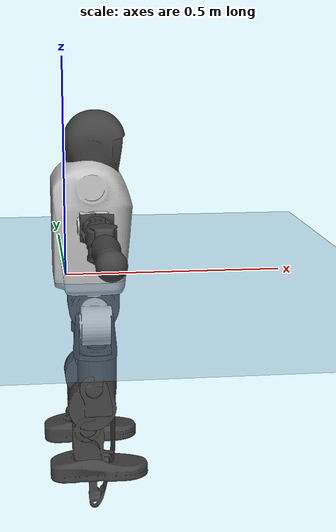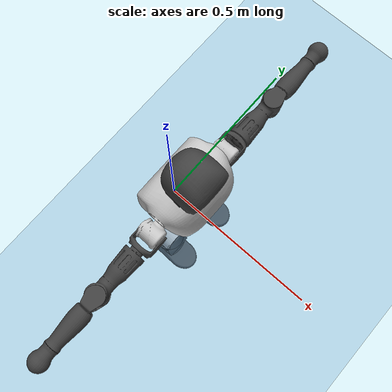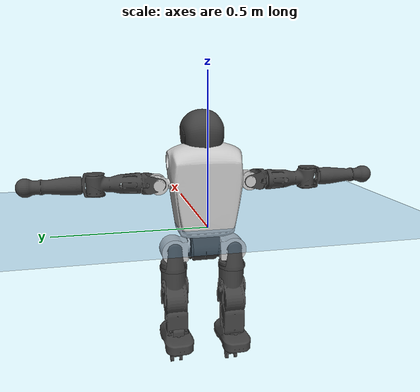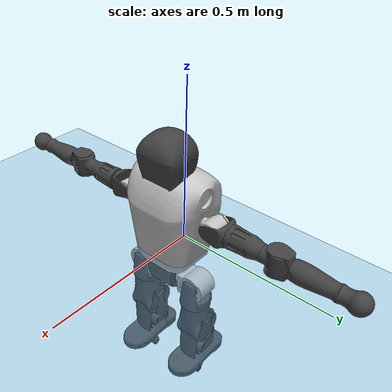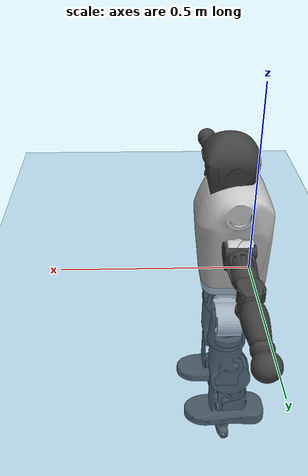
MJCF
<mujoco model="T1">
  <compiler angle="radian" assetdir="assets" balanceinertia="true" inertiafromgeom="false"/>

  <option timestep="0.005" density="1.2" viscosity="2e-05"/>

  <size nkey="1"/>

  <visual>
    <quality shadowsize="8192"/>
    <map shadowclip="0.5"/>
  </visual>

  <default>
    <default class="/">
      <joint armature="0.01" damping="0.01" frictionloss="0.1"/>
      <geom contype="0" conaffinity="0" group="1" solref="-1000 -80"/>
      <site size="0.01 0.005 0.005" group="5"/>
      <general forcelimited="true" biastype="affine" gainprm="25" biasprm="0 -25 -0.6"/>
      <default class="t1">
        <geom rgba="0.25 0.25 0.25 1"/>
        <default class="visual">
          <geom type="mesh" group="2"/>
        </default>
        <default class="collision">
          <geom group="3"/>
        </default>
        <default class="foot">
          <geom size="0.1115 0.05 0.015" type="box" condim="6" group="4" priority="1" solimp="0.015 1 0.015"/>
        </default>
        <default class="reward_collision_sphere">
          <geom group="5" rgba="1 0 0 1"/>
        </default>
      </default>
    </default>
  </default>

  <asset>
    <texture type="skybox" colorspace="auto" name="//unnamed_texture_0" builtin="gradient" rgb1="0.95 0.95 0.95" rgb2="0.95 0.95 0.95" width="100" height="600"/>
    <texture type="2d" colorspace="auto" name="texplane" builtin="checker" rgb1="0.345 0.575 0.748" rgb2="0.345 0.575 0.748" markrgb="1 1 1" width="512" height="512"/>
    <material name="MatPlane" class="/" texture="texplane" texuniform="true" texrepeat="2 2" specular="0.9"/>
    <mesh name="Trunk" class="/" file="Trunk.stl"/>
    <mesh name="H1" class="/" file="H1.stl"/>
    <mesh name="H2" class="/" file="H2.stl"/>
    <mesh name="AL1" class="/" file="AL1.stl"/>
    <mesh name="AL2" class="/" file="AL2.stl"/>
    <mesh name="AL3" class="/" file="AL3.stl"/>
    <mesh name="left_hand_link" class="/" file="left_hand_link.stl"/>
    <mesh name="AR1" class="/" file="AR1.stl"/>
    <mesh name="AR2" class="/" file="AR2.stl"/>
    <mesh name="AR3" class="/" file="AR3.stl"/>
    <mesh name="right_hand_link" class="/" file="right_hand_link.stl"/>
    <mesh name="Waist" class="/" file="Waist.stl"/>
    <mesh name="Hip_Pitch_Left" class="/" file="Hip_Pitch_Left.stl"/>
    <mesh name="Hip_Roll_Left" class="/" file="Hip_Roll_Left.stl"/>
    <mesh name="Hip_Yaw_Left" class="/" file="Hip_Yaw_Left.stl"/>
    <mesh name="Shank_Left" class="/" file="Shank_Left.stl"/>
    <mesh name="Ankle_Cross_Left" class="/" file="Ankle_Cross_Left.stl"/>
    <mesh name="left_foot_link" class="/" file="left_foot_link.stl"/>
    <mesh name="Hip_Pitch_Right" class="/" file="Hip_Pitch_Right.stl"/>
    <mesh name="Hip_Roll_Right" class="/" file="Hip_Roll_Right.stl"/>
    <mesh name="Hip_Yaw_Right" class="/" file="Hip_Yaw_Right.stl"/>
    <mesh name="Shank_Right" class="/" file="Shank_Right.stl"/>
    <mesh name="Ankle_Cross_Right" class="/" file="Ankle_Cross_Right.stl"/>
    <mesh name="right_foot_link" class="/" file="right_foot_link.stl"/>
  </asset>

  <worldbody>
    <geom name="floor" class="/" size="100 100 0.125" type="plane" group="0" material="MatPlane"/>
    <light name="toplight_shadow" class="/" pos="0 0 5" dir="0.0990148 0.0990148 -0.990148" type="directional" ambient="0.04 0.04 0.04" diffuse="0.55 0.55 0.55" specular="0.12 0.12 0.12"/>
    <light name="toplight_fill" class="/" pos="0 0 5" dir="0.0990148 0.0990148 -0.990148" type="directional" castshadow="false" ambient="0.04 0.04 0.04" diffuse="0.3 0.3 0.3" specular="0.08 0.08 0.08"/>
    <body name="trunk" childclass="t1" pos="-0.000817339 -1.61888e-05 -0.00142122" quat="1 -0.000639674 -0.000679261 9.36239e-05">
      <inertial pos="0.0540227 -0.00328714 0.065712" quat="0.999914 0.00469342 -0.0113445 0.00469722" mass="8.27197" diaginertia="0.0868531 0.0801902 0.00654359"/>
      <joint name="//unnamed_joint_0" type="free" armature="0" damping="0" frictionloss="0"/>
      <geom name="//unnamed_geom_1" class="visual" rgba="0.76 0.76 0.76 1" mesh="Trunk"/>
      <geom name="//unnamed_geom_2" class="collision" size="0.0655658 0.0874211 0.131132" pos="0.0589535 0 0.0770088" type="box"/>
      <geom name="//unnamed_geom_3" class="reward_collision_sphere" size="0.100534" pos="0.0589535 0 0.064174"/>
      <geom name="//unnamed_geom_4" class="reward_collision_sphere" size="0.0131132" pos="0.0589535 0.0848584 0"/>
      <geom name="//unnamed_geom_5" class="reward_collision_sphere" size="0.0131132" pos="0.0589535 -0.0848584 0"/>
      <geom name="//unnamed_geom_6" class="reward_collision_sphere" size="0.0131132" pos="0.0589535 0.106822 0.115513"/>
      <geom name="//unnamed_geom_7" class="reward_collision_sphere" size="0.0131132" pos="0.0589535 -0.106822 0.115513"/>
      <site name="imu" pos="-0.0225989 0.0132032 0.00976494" size="0.00874211"/>
      <camera name="track" pos="0 -1.99667 0" quat="0.707107 0.707107 0 0" mode="trackcom"/>
      <camera name="ego_camera" pos="0.119872 0 0.269531" quat="-0.5 -0.5 0.5 0.5"/>
      <body name="H1" pos="0.0585395 -0.000911535 0.155361" quat="1 0.000423229 6.51266e-05 0.000188074">
        <inertial pos="0.000813417 -0.00386935 0.0343881" quat="0.7688 -0.0109711 -0.00793358 0.639346" mass="0.287271" diaginertia="0.000211949 0.000220412 1.57783e-05"/>
        <joint name="AAHead_yaw" pos="0 0 0" axis="0.00191912 -0.000899297 0.999998" range="-1.53439 1.57583" armature="0.00985113" damping="0.0180454" frictionloss="0.0762193"/>
        <geom name="//unnamed_geom_8" class="visual" mesh="H1"/>
        <body name="H2" pos="-0.000956868 0.00318739 0.0374078" quat="1 0.00010999 -6.26319e-06 4.04411e-05">
          <inertial pos="0.00278274 -0.00241524 0.0632186" quat="0.988604 0.113449 -0.0686759 -0.071241" mass="0.400672" diaginertia="0.00192632 0.00186164 0.000183401"/>
          <joint name="Head_pitch" pos="0 0 0" axis="-0.000632303 -0.999916 0.012971" range="-1.23428 0.347276" armature="0.00972403" damping="0.00324593" frictionloss="0.08826"/>
          <geom name="//unnamed_geom_9" class="visual" mesh="H2"/>
          <geom name="//unnamed_geom_10" class="collision" size="0.0699369" pos="0.00982558 0 0.0705914"/>
          <geom name="//unnamed_geom_11" class="reward_collision_sphere" size="0.078679" pos="0.0196512 0 0.064174"/>
        </body>
      </body>
      <body name="AL1" pos="0.0576558 0.107606 0.142566" quat="1 -2.46766e-05 -0.000461787 -0.000204048">
        <inertial pos="0.00125825 0.0463924 -0.00332769" quat="0.49903 0.496968 -0.506783 0.497155" mass="0.340471" diaginertia="0.00120632 0.00128072 3.23879e-05"/>
        <joint name="Left_Shoulder_Pitch" pos="0 0 0" axis="-0.00409493 0.999924 0.0116658" stiffness="0.0163821" range="-3.2515 1.21861" armature="0.00980108" damping="0.0209061" frictionloss="0.090103"/>
        <geom name="//unnamed_geom_12" class="visual" rgba="0.76 0.76 0.76 1" mesh="AL1"/>
        <body name="AL2" pos="0.00389987 0.0440971 0.00278622" quat="0.999997 -0.000240947 -0.000859814 -0.0020861">
          <inertial pos="0.00611904 0.03832 0.00110025" quat="0.481098 0.520591 -0.485842 0.511358" mass="0.0958351" diaginertia="0.000345304 0.000322262 1.78197e-05"/>
          <joint name="Left_Shoulder_Roll" pos="0 0 0" axis="-0.99967 -0.00418346 -0.0253306" range="-1.58037 1.72132" armature="0.00931198" damping="0.0271033" frictionloss="0.0776976"/>
          <geom name="//unnamed_geom_13" class="visual" mesh="AL2"/>
          <body name="AL3" pos="0.00229088 0.0576407 0.0024049" quat="0.999997 -0.00164588 0.00142649 0.00132257">
            <inertial pos="0.0018539 0.0864622 0.000267994" quat="0.7011 0.713045 0.00390351 0.00331095" mass="0.654728" diaginertia="0.0111267 0.0122722 6.36232e-05"/>
            <joint name="Left_Elbow_Pitch" pos="0 0 0" axis="0.00183116 -0.999997 -0.00134229" stiffness="0.0190176" range="-2.30448 2.25442" armature="0.0088047" damping="0.0104649" frictionloss="0.085908"/>
            <geom name="//unnamed_geom_14" class="visual" mesh="AL3"/>
            <geom name="//unnamed_geom_15" class="collision" size="0.0262263 0.0655658" pos="0 0.0499167 0" quat="0.707105 0.707108 0 0" type="cylinder"/>
            <geom name="//unnamed_geom_16" class="reward_collision_sphere" size="0.0314716"/>
            <body name="left_hand_link" pos="0.00194938 0.142656 0.000547655" quat="0.999999 0.00123871 0.000947123 -0.000739243">
              <inertial pos="-0.000934598 0.107877 0.00342183" quat="0.716972 0.697086 -0.000696953 0.00461499" mass="0.230154" diaginertia="0.0080664 0.00858959 2.4431e-05"/>
              <joint name="Left_Elbow_Yaw" pos="0 0 0" axis="-0.00312904 0.0097366 0.999948" range="-2.43493 -0.0315057" armature="0.0086031" damping="0.00940534" frictionloss="0.067704"/>
              <geom name="//unnamed_geom_17" class="visual" mesh="left_hand_link"/>
              <geom name="//unnamed_geom_18" class="collision" size="0.0262263 0.0764934" pos="0 0.129783 0" quat="0.707105 0.707108 0 0" type="cylinder"/>
              <geom name="//unnamed_geom_19" class="reward_collision_sphere" size="0.0437105"/>
              <geom name="//unnamed_geom_20" class="reward_collision_sphere" size="0.0305974" pos="0 0.109817 0"/>
              <geom name="//unnamed_geom_21" class="reward_collision_sphere" size="0.0305974" pos="0 0.214642 0"/>
            </body>
          </body>
        </body>
      </body>
      <body name="AR1" pos="0.058716 -0.106499 0.142905" quat="0.999998 0.000141975 0.0018882 -4.07524e-05">
        <inertial pos="-0.000455471 -0.0473269 0.00260702" quat="0.503479 0.498893 -0.506194 0.491306" mass="0.352678" diaginertia="0.00123327 0.00121405 3.10567e-05"/>
        <joint name="Right_Shoulder_Pitch" pos="0 0 0" axis="-0.00559928 -0.999975 0.0043051" range="-1.29763 3.25765" armature="0.00857282" damping="0" frictionloss="0.0907582"/>
        <geom name="//unnamed_geom_22" class="visual" rgba="0.76 0.76 0.76 1" mesh="AR1"/>
        <body name="AR2" pos="0.0033506 -0.0480786 0.000254688" quat="1 -0.000144038 -0.000611318 -0.000228923">
          <inertial pos="0.00296355 -0.035745 0.000561662" quat="0.511065 0.486211 -0.514899 0.487125" mass="0.11281" diaginertia="0.000390834 0.000372491 1.90951e-05"/>
          <joint name="Right_Shoulder_Roll" pos="0 0 0" axis="-0.999983 0.00300377 0.00500733" range="-1.71707 1.64027" armature="0.008684" damping="0.0190395" frictionloss="0.100868"/>
          <geom name="//unnamed_geom_23" class="visual" mesh="AR2"/>
          <body name="AR3" pos="-0.00120369 -0.0649868 -0.0025818" quat="1 0.000158897 0.000900516 0.000145394">
            <inertial pos="4.45386e-05 -0.0877968 -0.00198132" quat="0.705987 0.707772 0.0208464 0.0143904" mass="0.663979" diaginertia="0.011493 0.0125758 6.47183e-05"/>
            <joint name="Right_Elbow_Pitch" pos="0 0 0" axis="0.000587449 0.999997 -0.00230263" range="-2.26396 2.27342" armature="0.00762515" damping="0.00802628" frictionloss="0.0711663"/>
            <geom name="//unnamed_geom_24" class="visual" mesh="AR3"/>
            <geom name="//unnamed_geom_25" class="collision" size="0.0262263 0.0655658" pos="0 -0.0499167 0" quat="0.707105 0.707108 0 0" type="cylinder"/>
            <geom name="//unnamed_geom_26" class="reward_collision_sphere" size="0.0314716"/>
            <body name="right_hand_link" pos="0.00258373 -0.149134 0.00251664" quat="1 -0.00045706 0.000313597 0.000277904">
              <inertial pos="0.00219184 -0.109016 -0.00285024" quat="0.700199 0.71385 -0.0033438 0.0113136" mass="0.236861" diaginertia="0.00785021 0.008452 2.47272e-05"/>
              <joint name="Right_Elbow_Yaw" pos="0 0 0" axis="0.0106492 0.00702676 0.999919" range="0.0288582 2.4866" armature="0.006628" damping="0.00696926" frictionloss="0.0887976"/>
              <geom name="//unnamed_geom_27" class="visual" mesh="right_hand_link"/>
              <geom name="//unnamed_geom_28" class="collision" size="0.0262263 0.0764934" pos="0 -0.129783 0" quat="0.707105 0.707108 0 0" type="cylinder"/>
              <geom name="//unnamed_geom_29" class="reward_collision_sphere" size="0.0437105"/>
              <geom name="//unnamed_geom_30" class="reward_collision_sphere" size="0.0305974" pos="0 -0.109817 0"/>
              <geom name="//unnamed_geom_31" class="reward_collision_sphere" size="0.0305974" pos="0 -0.214642 0"/>
            </body>
          </body>
        </body>
      </body>
      <body name="Waist" pos="0.0623469 0.00288849 -0.0725899" quat="1 -0.000161062 -0.000400693 0.00051351">
        <inertial pos="-0.00155848 -0.00145787 0.00312859" quat="0.984232 0.00812849 -0.176658 0.00357368" mass="1.75607" diaginertia="0.00499466 0.00559274 0.000541475"/>
        <joint name="Waist" pos="0 0 0" axis="0.00813381 0.00547613 0.999952" range="-1.66315 1.60385" armature="0.00959052" damping="0.0226092" frictionloss="0.0795516"/>
        <geom name="//unnamed_geom_32" class="visual" mesh="Waist"/>
        <body name="Hip_Pitch_Left" pos="0.00345009 0.103321 0.00143833" quat="0.999998 -0.000202179 0.000492002 0.00177874">
          <inertial pos="0.00068012 -0.0116259 -0.0111627" quat="0.975205 0.220634 0.0164683 0.00507701" mass="0.65888" diaginertia="0.0016431 0.00135246 0.000134688"/>
          <joint name="Left_Hip_Pitch" pos="0 0 0" axis="-0.0110817 0.99977 -0.0183825" range="-1.77818 1.57315" armature="0.0088379" damping="0.0234491" frictionloss="0.0876988"/>
          <geom name="//unnamed_geom_33" class="visual" rgba="0.76 0.76 0.76 1" mesh="Hip_Pitch_Left"/>
          <body name="Hip_Roll_Left" pos="0.00121286 1.10687e-05 -0.0130007" quat="0.999999 -0.00029429 0.000607569 -0.00113314">
            <inertial pos="0.00420833 0.000709863 -0.0374824" quat="0.707634 -0.00601429 -0.00629559 0.706526" mass="0.256528" diaginertia="0.00157687 0.001558 5.77333e-05"/>
            <joint name="Left_Hip_Roll" pos="0 0 0" axis="-0.999976 -0.00687252 0.00061936" stiffness="0.00122497" range="-1.51359 0.155757" armature="0.0085168" damping="0.00239882" frictionloss="0.0810939"/>
            <geom name="//unnamed_geom_34" class="visual" mesh="Hip_Roll_Left"/>
            <geom name="//unnamed_geom_35" class="reward_collision_sphere" size="0.0480816"/>
            <body name="Hip_Yaw_Left" pos="-0.00238688 0.000341739 -0.0492368" quat="1 -1.40352e-06 1.28243e-06 -1.83693e-06">
              <inertial pos="-0.00454681 -0.00129854 -0.0595784" quat="0.683561 -0.0235479 -0.0375855 0.728544" mass="1.42135" diaginertia="0.0242103 0.0265496 0.000285793"/>
              <joint name="Left_Hip_Yaw" pos="0 0 0" axis="-0.0129838 0.00465884 -0.999905" stiffness="0.0109305" range="-0.995806 1.06559" armature="0.00864103" damping="0" frictionloss="0.0879968"/>
              <geom name="//unnamed_geom_36" class="visual" mesh="Hip_Yaw_Left"/>
              <geom name="//unnamed_geom_37" class="collision" size="0.0437105 0.0699369" type="cylinder"/>
              <body name="Shank_Left" pos="-0.0124962 -0.00129531 -0.0860564" quat="1 -0.000449294 -0.000212067 -3.3405e-05">
                <inertial pos="-0.00613951 0.00237738 -0.0779228" quat="0.99736 0.00683395 -0.0265528 0.0672419" mass="1.15262" diaginertia="0.0305636 0.0333718 0.000195483"/>
                <joint name="Left_Knee_Pitch" pos="0 0 0" axis="0.00236622 0.999997 1.22849e-05" range="0.0377092 2.35526" armature="0.00980755" damping="0.00270969" frictionloss="0.0776253"/>
                <geom name="//unnamed_geom_38" class="visual" mesh="Shank_Left"/>
                <geom name="//unnamed_geom_39" class="collision" size="0.0437105 0.0655658" pos="0 0 -0.0770088" type="cylinder"/>
                <geom name="//unnamed_geom_40" class="reward_collision_sphere" size="0.0568237"/>
                <body name="Ankle_Cross_Left" pos="-0.00245761 -0.00036835 -0.177995" quat="1 0.000143701 -9.65431e-05 0.000129055">
                  <inertial pos="-0.00559194 0.000975128 -0.000419399" quat="0.44725 0.557561 0.546119 0.43686" mass="0.0483817" diaginertia="2.4803e-05 2.45896e-05 1.18013e-06"/>
                  <joint name="Left_Ankle_Pitch" pos="0 0 0" axis="-0.000734013 0.999989 0.00463186" range="-0.77069 0.361493" armature="0.00835871" damping="0.0246559" frictionloss="0.0761804"/>
                  <geom name="//unnamed_geom_41" class="visual" mesh="Ankle_Cross_Left"/>
                  <body name="left_foot_link" pos="-0.00301212 -0.000425729 -0.00362851" quat="0.999999 5.81254e-05 -0.000512419 -0.000916049">
                    <inertial pos="-0.00234216 0.00342045 -0.00330719" quat="3.38443e-05 0.621044 0.00112258 0.783775" mass="0.452449" diaginertia="0.00247642 0.0023722 0.000246735"/>
                    <joint name="Left_Ankle_Roll" pos="0 0 0" axis="-0.999914 -0.0131296 0.000339969" stiffness="0.0064331" range="-0.442956 0.403651" armature="0.00850832" damping="0" frictionloss="0.0959901"/>
                    <geom name="//unnamed_geom_42" class="visual" mesh="left_foot_link"/>
                    <geom name="left_foot" class="foot" size="0.111426 0.0330465 0.0137661" pos="0.00982558 0 -0.0096261"/>
                    <geom name="//unnamed_geom_44" class="reward_collision_sphere" size="0.045459" pos="0.00982558 0 -0.0096261"/>
                    <geom name="//unnamed_geom_45" class="reward_collision_sphere" size="0.0262263" pos="0.093343 -0.0229617 -0.0096261"/>
                    <geom name="//unnamed_geom_46" class="reward_collision_sphere" size="0.0262263" pos="-0.0687791 -0.0229617 -0.0096261"/>
                    <site name="left_foot" class="foot" pos="0.00982558 0 -0.0096261" size="0.00874211"/>
                  </body>
                </body>
              </body>
            </body>
          </body>
        </body>
        <body name="Hip_Pitch_Right" pos="-8.35337e-05 -0.103126 -0.00425676" quat="1 0.000410249 0.000124967 -0.000241886">
          <inertial pos="0.00064327 0.0102495 -0.0150528" quat="0.974575 -0.222959 0.0173016 -0.0138982" mass="0.703608" diaginertia="0.00170701 0.00150422 0.000137898"/>
          <joint name="Right_Hip_Pitch" pos="0 0 0" axis="0.00573682 -0.99997 -0.00524588" range="-1.55789 1.82101" armature="0.00794649" damping="0" frictionloss="0.0909084"/>
          <geom name="//unnamed_geom_47" class="visual" rgba="0.76 0.76 0.76 1" mesh="Hip_Pitch_Right"/>
          <body name="Hip_Roll_Right" pos="-0.000685678 -0.00101043 -0.0132679" quat="0.999997 0.000264756 -0.000621787 -0.00227861">
            <inertial pos="-0.00313591 0.00166029 -0.0341373" quat="0.711614 -0.00727591 -0.00971706 0.702466" mass="0.260188" diaginertia="0.00162265 0.00157056 5.63962e-05"/>
            <joint name="Right_Hip_Roll" pos="0 0 0" axis="-0.999998 -0.000488649 -0.00177572" range="-0.184586 1.5433" armature="0.00933271" damping="0.0165421" frictionloss="0.0877132"/>
            <geom name="//unnamed_geom_48" class="visual" mesh="Hip_Roll_Right"/>
            <geom name="//unnamed_geom_49" class="reward_collision_sphere" size="0.0480816"/>
            <body name="Hip_Yaw_Right" pos="0.00147017 0.00136303 -0.0562277" quat="0.999999 -0.000717463 0.0010635 0.000519526">
              <inertial pos="-0.00625579 -0.00324389 -0.0554547" quat="0.714781 -0.0316438 -0.0338384 0.697812" mass="1.43663" diaginertia="0.0219082 0.0227347 0.000276793"/>
              <joint name="Right_Hip_Yaw" pos="0 0 0" axis="0.0129088 -0.00653428 -0.999895" stiffness="0.0158278" range="-0.977551 1.09781" armature="0.00839831" damping="0.0186819" frictionloss="0.10096"/>
              <geom name="//unnamed_geom_50" class="visual" mesh="Hip_Yaw_Right"/>
              <geom name="//unnamed_geom_51" class="collision" size="0.0437105 0.0699369" type="cylinder"/>
              <body name="Shank_Right" pos="-0.0103545 -0.000306132 -0.0887374" quat="0.999999 0.00110566 0.000943033 -0.000560448">
                <inertial pos="-0.00826099 0.000604241 -0.0814894" quat="0.999262 -0.000549193 -0.0232125 -0.0306121" mass="1.0949" diaginertia="0.0320184 0.0347147 0.000210906"/>
                <joint name="Right_Knee_Pitch" pos="0 0 0" axis="-0.00205775 -0.999859 0.0166455" range="-2.39286 0.037473" armature="0.00948471" damping="0.0127067" frictionloss="0.0949704"/>
                <geom name="//unnamed_geom_52" class="visual" mesh="Shank_Right"/>
                <geom name="//unnamed_geom_53" class="collision" size="0.0437105 0.0655658" pos="0 0 -0.0770088" type="cylinder"/>
                <geom name="//unnamed_geom_54" class="reward_collision_sphere" size="0.0568237"/>
                <body name="Ankle_Cross_Right" pos="0.00239939 -0.000723559 -0.17931" quat="0.999999 -0.00100585 0.000759587 -8.17507e-05">
                  <inertial pos="-0.00411965 -0.00111342 -0.00382345" quat="0.443921 0.546922 0.548427 0.450597" mass="0.0507945" diaginertia="2.66813e-05 2.56489e-05 1.21078e-06"/>
                  <joint name="Right_Ankle_Pitch" pos="0 0 0" axis="0.0229796 -0.999699 -0.00856313" stiffness="0.0183165" range="-0.33857 0.882405" armature="0.00809054" damping="0.00890526" frictionloss="0.107867"/>
                  <geom name="//unnamed_geom_55" class="visual" mesh="Ankle_Cross_Right"/>
                  <body name="right_foot_link" pos="-0.000400185 -0.00292799 -0.00804518" quat="1 -0.000377594 7.54355e-05 -0.000212692">
                    <inertial pos="0.00242685 -0.00225563 -0.00351208" quat="-8.8821e-05 0.629532 -0.00259212 0.77697" mass="0.456916" diaginertia="0.00253912 0.00248434 0.000239245"/>
                    <joint name="Right_Ankle_Roll" pos="0 0 0" axis="-0.999972 -0.00749803 -0.000269403" stiffness="0.000187915" range="-0.536175 0.467835" armature="0.00920938" damping="0.0117317" frictionloss="0.09469"/>
                    <geom name="//unnamed_geom_56" class="visual" mesh="right_foot_link"/>
                    <geom name="right_foot" class="foot" size="0.11655 0.0366177 0.0123818" pos="0.00982558 0 -0.0096261"/>
                    <geom name="//unnamed_geom_58" class="reward_collision_sphere" size="0.0349684"/>
                    <geom name="//unnamed_geom_59" class="reward_collision_sphere" size="0.0262263" pos="0.00982558 0 -0.0096261"/>
                    <geom name="//unnamed_geom_60" class="reward_collision_sphere" size="0.0262263" pos="0.093343 0.0229617 -0.0096261"/>
                    <geom name="//unnamed_geom_61" class="reward_collision_sphere" size="0.0262263" pos="-0.0687791 0.0229617 -0.0096261"/>
                    <site name="right_foot" class="foot" pos="0.00982558 0 -0.0096261" size="0.00874211"/>
                  </body>
                </body>
              </body>
            </body>
          </body>
        </body>
      </body>
    </body>
  </worldbody>

  <contact>
    <pair class="/" geom1="floor" geom2="left_foot" name="//unnamed_contact_0"/>
    <pair class="/" geom1="floor" geom2="right_foot" name="//unnamed_contact_1"/>
  </contact>

  <actuator>
    <general name="AAHead_yaw" class="/" joint="AAHead_yaw" forcerange="-5.79385 5.79385" gainprm="21.4768" biasprm="0 -21.4768 -0.562461"/>
    <general name="Head_pitch" class="/" joint="Head_pitch" forcerange="-6.59182 6.59182" gainprm="21.4768" biasprm="0 -21.4768 -0.562461"/>
    <general name="Left_Shoulder_Pitch" class="/" joint="Left_Shoulder_Pitch" forcerange="-15.9202 15.9202" gainprm="21.4768" biasprm="0 -21.4768 -0.562461"/>
    <general name="Left_Shoulder_Roll" class="/" joint="Left_Shoulder_Roll" forcerange="-15.9111 15.9111" gainprm="21.4768" biasprm="0 -21.4768 -0.562461"/>
    <general name="Left_Elbow_Pitch" class="/" joint="Left_Elbow_Pitch" forcerange="-14.6045 14.6045" gainprm="21.4768" biasprm="0 -21.4768 -0.562461"/>
    <general name="Left_Elbow_Yaw" class="/" joint="Left_Elbow_Yaw" forcerange="-14.4158 14.4158" gainprm="21.4768" biasprm="0 -21.4768 -0.562461"/>
    <general name="Right_Shoulder_Pitch" class="/" joint="Right_Shoulder_Pitch" forcerange="-15.2742 15.2742" gainprm="21.4768" biasprm="0 -21.4768 -0.562461"/>
    <general name="Right_Shoulder_Roll" class="/" joint="Right_Shoulder_Roll" forcerange="-16.0961 16.0961" gainprm="21.4768" biasprm="0 -21.4768 -0.562461"/>
    <general name="Right_Elbow_Pitch" class="/" joint="Right_Elbow_Pitch" forcerange="-14.384 14.384" gainprm="21.4768" biasprm="0 -21.4768 -0.562461"/>
    <general name="Right_Elbow_Yaw" class="/" joint="Right_Elbow_Yaw" forcerange="-14.3634 14.3634" gainprm="21.4768" biasprm="0 -21.4768 -0.562461"/>
    <general name="Waist" class="/" joint="Waist" forcerange="-27.9049 27.9049" gainprm="21.4768" biasprm="0 -21.4768 -0.562461"/>
    <general name="Left_Hip_Pitch" class="/" joint="Left_Hip_Pitch" forcerange="-46.2168 46.2168" gainprm="21.4768" biasprm="0 -21.4768 -0.562461"/>
    <general name="Left_Hip_Roll" class="/" joint="Left_Hip_Roll" forcerange="-28.8583 28.8583" gainprm="21.4768" biasprm="0 -21.4768 -0.562461"/>
    <general name="Left_Hip_Yaw" class="/" joint="Left_Hip_Yaw" forcerange="-28.7414 28.7414" gainprm="21.4768" biasprm="0 -21.4768 -0.562461"/>
    <general name="Left_Knee_Pitch" class="/" joint="Left_Knee_Pitch" forcerange="-47.3796 47.3796" gainprm="21.4768" biasprm="0 -21.4768 -0.562461"/>
    <general name="Left_Ankle_Pitch" class="/" joint="Left_Ankle_Pitch" forcerange="-19.0989 19.0989" gainprm="21.4768" biasprm="0 -21.4768 -0.562461"/>
    <general name="Left_Ankle_Roll" class="/" joint="Left_Ankle_Roll" forcerange="-13.5797 13.5797" gainprm="21.4768" biasprm="0 -21.4768 -0.562461"/>
    <general name="Right_Hip_Pitch" class="/" joint="Right_Hip_Pitch" forcerange="-33.9623 33.9623" gainprm="21.4768" biasprm="0 -21.4768 -0.562461"/>
    <general name="Right_Hip_Roll" class="/" joint="Right_Hip_Roll" forcerange="-28.7806 28.7806" gainprm="21.4768" biasprm="0 -21.4768 -0.562461"/>
    <general name="Right_Hip_Yaw" class="/" joint="Right_Hip_Yaw" forcerange="-28.6851 28.6851" gainprm="21.4768" biasprm="0 -21.4768 -0.562461"/>
    <general name="Right_Knee_Pitch" class="/" joint="Right_Knee_Pitch" forcerange="-53.0209 53.0209" gainprm="21.4768" biasprm="0 -21.4768 -0.562461"/>
    <general name="Right_Ankle_Pitch" class="/" joint="Right_Ankle_Pitch" forcerange="-16.5233 16.5233" gainprm="21.4768" biasprm="0 -21.4768 -0.562461"/>
    <general name="Right_Ankle_Roll" class="/" joint="Right_Ankle_Roll" forcerange="-14.9531 14.9531" gainprm="21.4768" biasprm="0 -21.4768 -0.562461"/>
  </actuator>

  <sensor>
    <gyro site="imu" name="imu_angular_velocity"/>
    <velocimeter site="imu" name="imu_linear_velocity"/>
    <framelinvel objtype="site" objname="left_foot" name="left_foot_global_linear_velocity"/>
    <framelinvel objtype="site" objname="right_foot" name="right_foot_global_linear_velocity"/>
  </sensor>

  <keyframe>
    <key name="home" qpos="0 0 0.6385 1 0 0 0 0 0 0 1.4 0 -0.4 0 -1.4 0 0.4 0 -0.4 0 0 0.8 -0.4 0 0.4 0 0 -0.8 0.4 0"/>
  </keyframe>
</mujoco>
